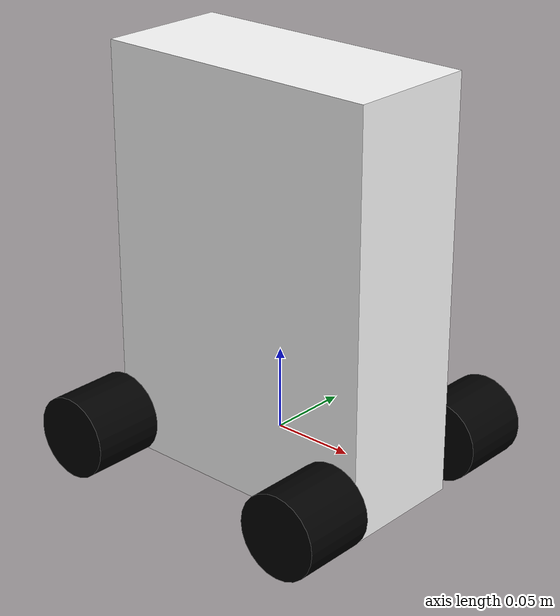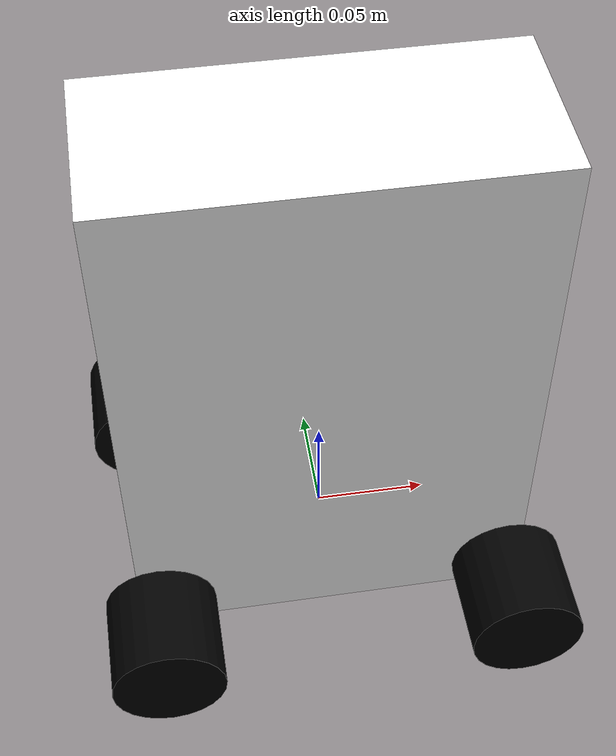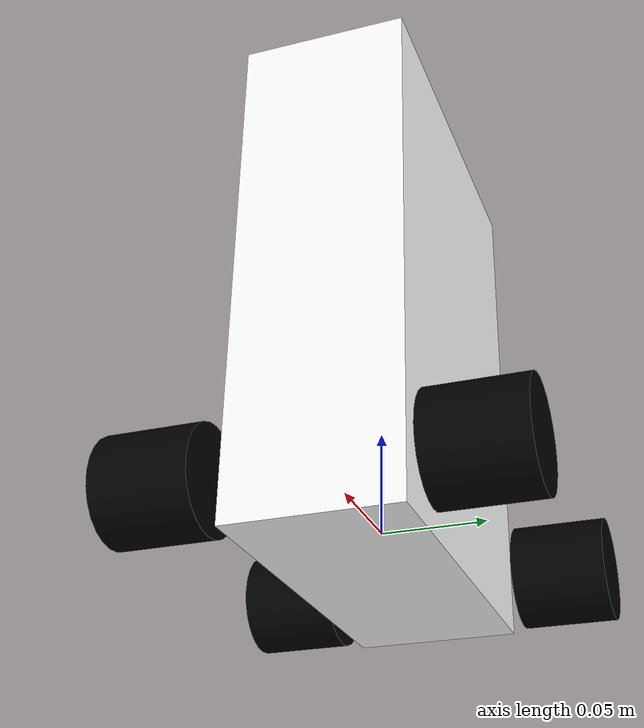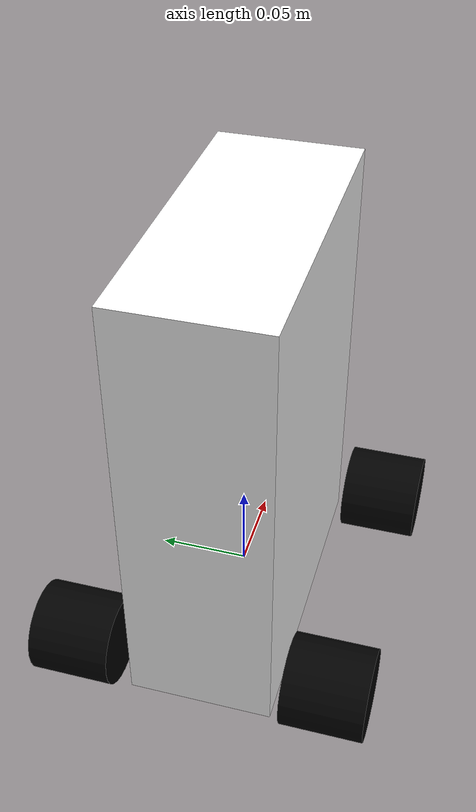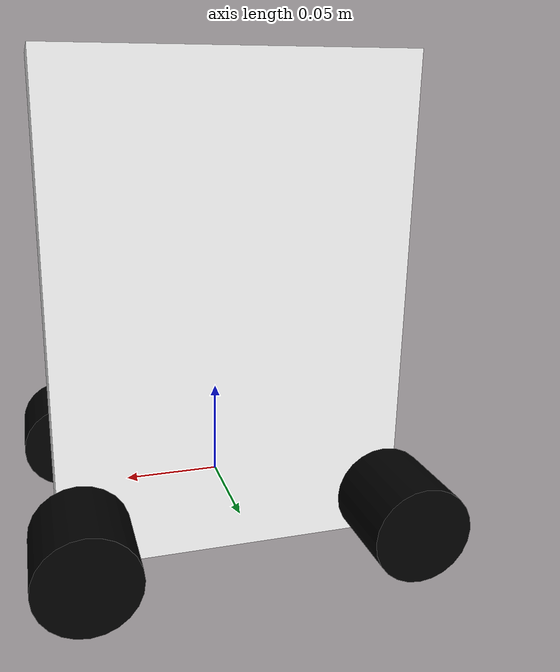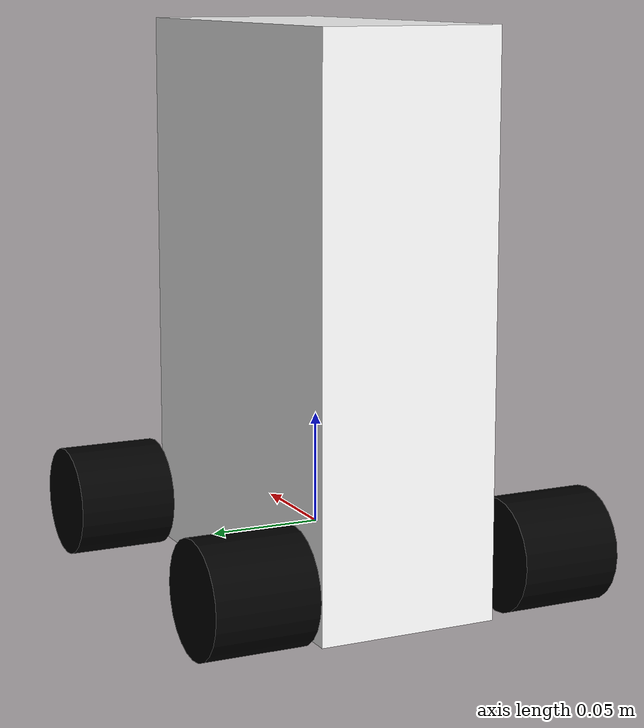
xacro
<?xml version="1.0"?>
<robot xmlns:xacro="http://www.ros.org/wiki/xacro">

	<xacro:include filename="inertial_macros.xacro"/>

	<material name="white">
		<color rgba="1 1 1 1"/>
	</material>

	<material name="black">
		<color rgba="0 0 0 1"/>
	</material>

	<material name="red">
		<color rgba="1 0 0 1"/>
	</material>

	<!-- BASE LINK -->
	<link name="base_link">

	</link>
	<joint name="base_footprint_joint" type="fixed">
		<parent link="base_link"/>
		<child link="base_footprint"/>
		<origin xyz="0 0 0" rpy="0 0 0"/>
	</joint>

	<link name="base_footprint">

	</link>

	<!-- CHASSIS -->
	<joint name="chassis_joint" type="fixed">
		<parent link="base_link"/>
		<child link="chassis_link"/>
		<origin xyz="0 0 0"/>
	</joint>

	<link name="chassis_link">
		<visual>
			<origin xyz="0 0 0.1"/>
			<geometry>
				<box size="0.18 0.08 0.25"/>
			</geometry>
			<material name="white"/>
		</visual>

		<collision>
			<origin xyz="0 0 0.1"/>
			<geometry>
				<box size="0.18 0.08 0.25"/>
			</geometry>
		</collision>

		<xacro:inertial_box mass="0.5" x="0.18" y="0.08" z="0.25">
        	<origin xyz="0 0 0.1" rpy="0 0 0"/>
        </xacro:inertial_box>
	</link>

	<gazebo reference="chassis">
		<material>Gazebo/White</material>
	</gazebo>

	<!-- WHEEL1 -->
	<joint name="wheel1_joint" type="continuous">
		<parent link="base_link"/>
		<child link="wheel1_link"/>
		<origin xyz="0.08 0.07 0" rpy="${-pi/2} 0 0"/>
		<axis xyz="0 0 1"/>
		<limit effort="10000" velocity="1000" />
	    <dynamics damping="1.0" friction="1.0" />
	</joint>

	<link name="wheel1_link">
		<visual>
			<geometry>
				<cylinder radius="0.025" length="0.045"/>
			</geometry>
			<material name="black"/>
		</visual>

		<collision>
			<geometry>
				<cylinder radius="0.025" length="0.045"/>
			</geometry>
		</collision>

		<xacro:inertial_cylinder mass="0.1" length="0.045" radius="0.025">
        	<origin xyz="0 0 0" rpy="0 0 0"/>
        </xacro:inertial_cylinder>
	</link>

	<gazebo reference="wheel1_link">
		<material>Gazebo/Black</material>
	</gazebo>

	<!-- WHEEL2 -->
	<joint name="wheel2_joint" type="continuous">
		<parent link="base_link"/>
		<child link="wheel2_link"/>
		<origin xyz="0.08 -0.07 0" rpy="${pi/2} 0 0"/>
		<axis xyz="0 0 -1"/>
		<limit effort="10000" velocity="1000" />
	    <dynamics damping="1.0" friction="1.0" />
	</joint>

	<link name="wheel2_link">
		<visual>
			<geometry>
				<cylinder radius="0.025" length="0.045"/>
			</geometry>
			<material name="black"/>
		</visual>

		<collision>
			<geometry>
				<cylinder radius="0.025" length="0.045"/>
			</geometry>
		</collision>

		<xacro:inertial_cylinder mass="0.1" length="0.045" radius="0.025">
        	<origin xyz="0 0 0" rpy="0 0 0"/>
        </xacro:inertial_cylinder>
	</link>

	<gazebo reference="wheel2_link">
		<material>Gazebo/Black</material>
	</gazebo>

	<!-- WHEEL3 -->
	<joint name="wheel3_joint" type="continuous">
		<parent link="base_link"/>
		<child link="wheel3_link"/>
		<origin xyz="-0.08 0.07 0" rpy="${-pi/2} 0 0"/>
		<axis xyz="0 0 1"/>
		<limit effort="10000" velocity="1000" />
	    <dynamics damping="1.0" friction="1.0" />
	</joint>

	<link name="wheel3_link">
		<visual>
			<geometry>
				<cylinder radius="0.025" length="0.045"/>
			</geometry>
			<material name="black"/>
		</visual>

		<collision>
			<geometry>
				<cylinder radius="0.025" length="0.045"/>
			</geometry>
		</collision>

		<xacro:inertial_cylinder mass="0.1" length="0.045" radius="0.025">
        	<origin xyz="0 0 0" rpy="0 0 0"/>
        </xacro:inertial_cylinder>
	</link>

	<gazebo reference="wheel3_link">
		<material>Gazebo/Black</material>
	</gazebo>

	<!-- WHEEL4 -->
	<joint name="wheel4_joint" type="continuous">
		<parent link="base_link"/>
		<child link="wheel4_link"/>
		<origin xyz="-0.08 -0.07 0" rpy="${pi/2} 0 0"/>
		<axis xyz="0 0 -1"/>
		<limit effort="10000" velocity="1000" />
	    <dynamics damping="1.0" friction="1.0" />
	</joint>

	<link name="wheel4_link">
		<visual>
			<geometry>
				<cylinder radius="0.025" length="0.045"/>
			</geometry>
			<material name="black"/>
		</visual>

		<collision>
			<geometry>
				<cylinder radius="0.025" length="0.045"/>
			</geometry>
		</collision>

		<xacro:inertial_cylinder mass="0.1" length="0.045" radius="0.025">
        	<origin xyz="0 0 0" rpy="0 0 0"/>
        </xacro:inertial_cylinder>
	</link>

	<gazebo reference="wheel4_link">
		<material>Gazebo/Black</material>
	</gazebo>
</robot>
